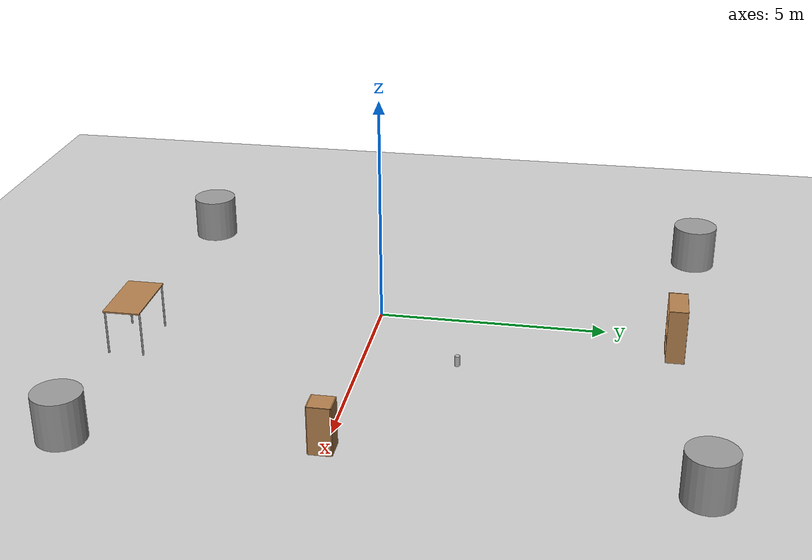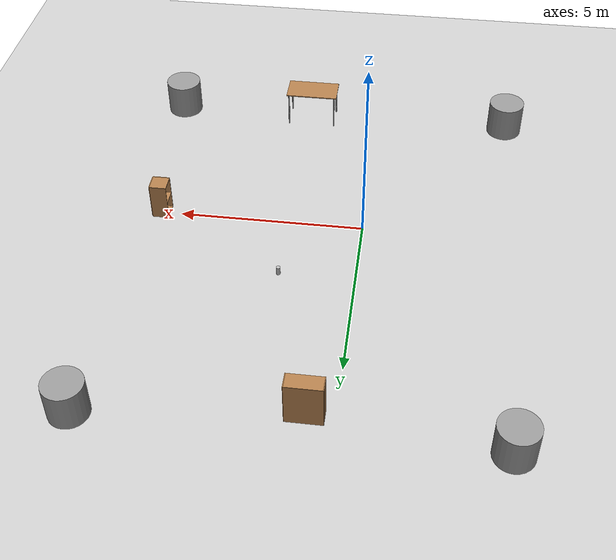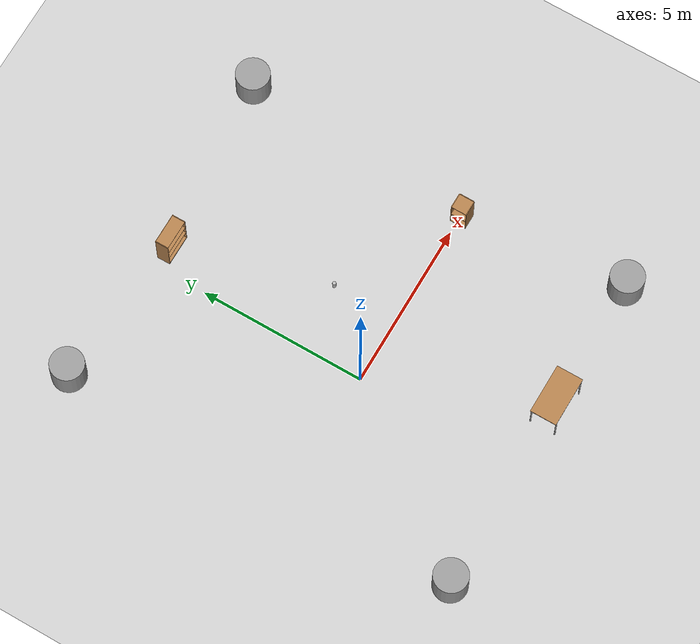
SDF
<sdf version="1.4">
 <world name="default">
  <light name="sun" type="directional">
   <pose>0 0 10 0 -0 0</pose>
   <diffuse>0.8 0.8 0.8 1</diffuse>
   <specular>0.2 0.2 0.2 1</specular>
   <attenuation>
    <range>1000</range>
    <constant>0.9</constant>
    <linear>0.01</linear>
    <quadratic>0.001</quadratic>
   </attenuation>
   <direction>-0.5 0.1 -0.9</direction>
  </light>
  <model name="ground_plane">
   <static>1</static>
   <link name="link">
    <collision name="collision">
     <geometry><plane><normal>0 0 1</normal><size>100 100</size></plane></geometry>
     <surface><friction><ode><mu>100</mu><mu2>50</mu2></ode></friction></surface>
    </collision>
    <visual name="visual">
     <cast_shadows>0</cast_shadows>
     <geometry><plane><normal>0 0 1</normal><size>100 100</size></plane></geometry>
     <material>
      <script><uri>file://media/materials/scripts/gazebo.material</uri><name>Gazebo/Grey</name></script>
     </material>
    </visual>
    <velocity_decay><linear>0</linear><angular>0</angular></velocity_decay>
   </link>
  </model>
  <physics type="ode">
   <max_step_size>0.001</max_step_size>
   <real_time_factor>1</real_time_factor>
   <real_time_update_rate>1000</real_time_update_rate>
   <gravity>0 0 -9.8</gravity>
  </physics>
  <scene><ambient>0.4 0.4 0.4 1</ambient><background>0.7 0.7 0.7 1</background><shadows>1</shadows></scene>
  <spherical_coordinates>
   <surface_model>EARTH_WGS84</surface_model>
   <latitude_deg>0</latitude_deg>
   <longitude_deg>0</longitude_deg>
   <elevation>0</elevation>
   <heading_deg>0</heading_deg>
  </spherical_coordinates>
  <model name="table">
   <static>1</static>
   <link name="link">
    <collision name="surface">
     <pose>0 0 1 0 -0 0</pose>
     <geometry><box><size>1.5 0.8 0.03</size></box></geometry>
     <surface><friction><ode><mu>0.6</mu><mu2>0.6</mu2></ode></friction></surface>
    </collision>
    <visual name="visual1">
     <pose>0 0 1 0 -0 0</pose>
     <geometry><box><size>1.5 0.8 0.03</size></box></geometry>
     <material>
      <script><uri>file://media/materials/scripts/gazebo.material</uri><name>Gazebo/Wood</name></script>
     </material>
    </visual>
    <collision name="front_left_leg">
     <pose>0.68 0.38 0.5 0 -0 0</pose>
     <geometry><cylinder><radius>0.02</radius><length>1</length></cylinder></geometry>
    </collision>
    <visual name="front_left_leg">
     <pose>0.68 0.38 0.5 0 -0 0</pose>
     <geometry><cylinder><radius>0.02</radius><length>1</length></cylinder></geometry>
     <material>
      <script><uri>file://media/materials/scripts/gazebo.material</uri><name>Gazebo/Grey</name></script>
     </material>
    </visual>
    <collision name="front_right_leg">
     <pose>0.68 -0.38 0.5 0 -0 0</pose>
     <geometry><cylinder><radius>0.02</radius><length>1</length></cylinder></geometry>
    </collision>
    <visual name="front_right_leg">
     <pose>0.68 -0.38 0.5 0 -0 0</pose>
     <geometry><cylinder><radius>0.02</radius><length>1</length></cylinder></geometry>
     <material>
      <script><uri>file://media/materials/scripts/gazebo.material</uri><name>Gazebo/Grey</name></script>
     </material>
    </visual>
    <collision name="back_right_leg">
     <pose>-0.68 -0.38 0.5 0 -0 0</pose>
     <geometry><cylinder><radius>0.02</radius><length>1</length></cylinder></geometry>
    </collision>
    <visual name="back_right_leg">
     <pose>-0.68 -0.38 0.5 0 -0 0</pose>
     <geometry><cylinder><radius>0.02</radius><length>1</length></cylinder></geometry>
     <material>
      <script><uri>file://media/materials/scripts/gazebo.material</uri><name>Gazebo/Grey</name></script>
     </material>
    </visual>
    <collision name="back_left_leg">
     <pose>-0.68 0.38 0.5 0 -0 0</pose>
     <geometry><cylinder><radius>0.02</radius><length>1</length></cylinder></geometry>
    </collision>
    <visual name="back_left_leg">
     <pose>-0.68 0.38 0.5 0 -0 0</pose>
     <geometry><cylinder><radius>0.02</radius><length>1</length></cylinder></geometry>
     <material>
      <script><uri>file://media/materials/scripts/gazebo.material</uri><name>Gazebo/Grey</name></script>
     </material>
    </visual>
    <velocity_decay><linear>0</linear><angular>0</angular></velocity_decay>
   </link>
   <pose>2 -5 0 0 -0 0</pose>
  </model>
  <model name="bookshelf">
   <static>1</static>
   <link name="link">
    <inertial><mass>1</mass></inertial>
    <collision name="back">
     <pose>0 0.005 0.6 0 -0 0</pose>
     <geometry><box><size>0.9 0.01 1.2</size></box></geometry>
    </collision>
    <visual name="visual1">
     <pose>0 0.005 0.6 0 -0 0</pose>
     <geometry><box><size>0.9 0.01 1.2</size></box></geometry>
     <material>
      <script><uri>file://media/materials/scripts/gazebo.material</uri><name>Gazebo/Wood</name></script>
     </material>
    </visual>
    <collision name="left_side">
     <pose>0.45 -0.195 0.6 0 -0 0</pose>
     <geometry><box><size>0.02 0.4 1.2</size></box></geometry>
    </collision>
    <visual name="visual2">
     <pose>0.45 -0.195 0.6 0 -0 0</pose>
     <geometry><box><size>0.02 0.4 1.2</size></box></geometry>
     <material>
      <script><uri>file://media/materials/scripts/gazebo.material</uri><name>Gazebo/Wood</name></script>
     </material>
    </visual>
    <collision name="right_side">
     <pose>-0.45 -0.195 0.6 0 -0 0</pose>
     <geometry><box><size>0.02 0.4 1.2</size></box></geometry>
    </collision>
    <visual name="visual3">
     <pose>-0.45 -0.195 0.6 0 -0 0</pose>
     <geometry><box><size>0.02 0.4 1.2</size></box></geometry>
     <material>
      <script><uri>file://media/materials/scripts/gazebo.material</uri><name>Gazebo/Wood</name></script>
     </material>
    </visual>
    <collision name="bottom">
     <pose>0 -0.195 0.03 0 -0 0</pose>
     <geometry><box><size>0.88 0.4 0.06</size></box></geometry>
    </collision>
    <visual name="visual4">
     <pose>0 -0.195 0.03 0 -0 0</pose>
     <geometry><box><size>0.88 0.4 0.06</size></box></geometry>
     <material>
      <script><uri>file://media/materials/scripts/gazebo.material</uri><name>Gazebo/Wood</name></script>
     </material>
    </visual>
    <collision name="top">
     <pose>0 -0.195 1.19 0 -0 0</pose>
     <geometry><box><size>0.88 0.4 0.02</size></box></geometry>
    </collision>
    <visual name="visual5">
     <pose>0 -0.195 1.19 0 -0 0</pose>
     <geometry><box><size>0.88 0.4 0.02</size></box></geometry>
     <material>
      <script><uri>file://media/materials/scripts/gazebo.material</uri><name>Gazebo/Wood</name></script>
     </material>
    </visual>
    <collision name="low_shelf">
     <pose>0 -0.195 0.43 0 -0 0</pose>
     <geometry><box><size>0.88 0.4 0.02</size></box></geometry>
    </collision>
    <visual name="visual6">
     <pose>0 -0.195 0.43 0 -0 0</pose>
     <geometry><box><size>0.88 0.4 0.02</size></box></geometry>
     <material>
      <script><uri>file://media/materials/scripts/gazebo.material</uri><name>Gazebo/Wood</name></script>
     </material>
    </visual>
    <collision name="high_shelf">
     <pose>0 -0.195 0.8 0 -0 0</pose>
     <geometry><box><size>0.88 0.4 0.02</size></box></geometry>
    </collision>
    <visual name="visual7">
     <pose>0 -0.195 0.8 0 -0 0</pose>
     <geometry><box><size>0.88 0.4 0.02</size></box></geometry>
     <material>
      <script><uri>file://media/materials/scripts/gazebo.material</uri><name>Gazebo/Wood</name></script>
     </material>
    </visual>
    <velocity_decay><linear>0</linear><angular>0</angular></velocity_decay>
   </link>
   <pose>0.705449 6.66698 0 0 -0 0</pose>
  </model>
  <model name="cabinet">
   <static>1</static>
   <link name="cabinet_bottom_plate">
    <inertial>
     <pose>0 0 -1 0 -0 0</pose>
     <inertia><ixx>2.05</ixx><ixy>0</ixy><ixz>0</ixz><iyy>2.05</iyy><iyz>0</iyz><izz>2.05</izz></inertia>
     <mass>25</mass>
    </inertial>
    <collision name="cabinet_bottom_plate_geom">
     <pose>0 0 0.01 0 -0 0</pose>
     <geometry><box><size>0.45 0.45 0.02</size></box></geometry>
    </collision>
    <visual name="cabinet_bottom_plate_geom_visual">
     <pose>0 0 0.01 0 -0 0</pose>
     <geometry><box><size>0.45 0.45 0.02</size></box></geometry>
     <material>
      <script><uri>file://media/materials/scripts/gazebo.material</uri><name>Gazebo/Wood</name></script>
     </material>
    </visual>
    <collision name="cabinet_bottom_plate_geom_cabinet_back_plate">
     <pose>0.235 0 0.51 0 -0 0</pose>
     <geometry><box><size>0.02 0.45 1.02</size></box></geometry>
    </collision>
    <visual name="cabinet_bottom_plate_geom_cabinet_back_plate_visual">
     <pose>0.235 0 0.51 0 -0 0</pose>
     <geometry><box><size>0.02 0.45 1.02</size></box></geometry>
     <material>
      <script><uri>file://media/materials/scripts/gazebo.material</uri><name>Gazebo/Wood</name></script>
     </material>
    </visual>
    <collision name="cabinet_bottom_plate_geom_cabinet_left_plate">
     <pose>0 0.235 0.51 0 -0 0</pose>
     <geometry><box><size>0.45 0.02 1.02</size></box></geometry>
    </collision>
    <visual name="cabinet_bottom_plate_geom_cabinet_left_plate_visual">
     <pose>0 0.235 0.51 0 -0 0</pose>
     <geometry><box><size>0.45 0.02 1.02</size></box></geometry>
     <material>
      <script><uri>file://media/materials/scripts/gazebo.material</uri><name>Gazebo/Wood</name></script>
     </material>
    </visual>
    <collision name="cabinet_bottom_plate_geom_cabinet_middle_plate">
     <pose>0 0 0.51 0 -0 0</pose>
     <geometry><box><size>0.45 0.45 0.02</size></box></geometry>
    </collision>
    <visual name="cabinet_bottom_plate_geom_cabinet_middle_plate_visual">
     <pose>0 0 0.51 0 -0 0</pose>
     <geometry><box><size>0.45 0.45 0.02</size></box></geometry>
     <material>
      <script><uri>file://media/materials/scripts/gazebo.material</uri><name>Gazebo/Wood</name></script>
     </material>
    </visual>
    <collision name="cabinet_bottom_plate_geom_cabinet_right_plate">
     <pose>0 -0.235 0.51 0 -0 0</pose>
     <geometry><box><size>0.45 0.02 1.02</size></box></geometry>
    </collision>
    <visual name="cabinet_bottom_plate_geom_cabinet_right_plate_visual">
     <pose>0 -0.235 0.51 0 -0 0</pose>
     <geometry><box><size>0.45 0.02 1.02</size></box></geometry>
     <material>
      <script><uri>file://media/materials/scripts/gazebo.material</uri><name>Gazebo/Wood</name></script>
     </material>
    </visual>
    <collision name="cabinet_bottom_plate_geom_cabinet_top_plate">
     <pose>0 0 1.01 0 -0 0</pose>
     <geometry><box><size>0.45 0.45 0.02</size></box></geometry>
    </collision>
    <visual name="cabinet_bottom_plate_geom_cabinet_top_plate_visual">
     <pose>0 0 1.01 0 -0 0</pose>
     <geometry><box><size>0.45 0.45 0.02</size></box></geometry>
     <material>
      <script><uri>file://media/materials/scripts/gazebo.material</uri><name>Gazebo/Wood</name></script>
     </material>
    </visual>
    <velocity_decay><linear>0</linear><angular>0</angular></velocity_decay>
   </link>
   <pose>5.54204 -0.044935 0 0 -0 0</pose>
  </model>
  <model name="unit_cylinder_1">
   <pose>6 -5 0.499996 1e-06 -1e-06 0</pose>
   <link name="link">
    <inertial>
     <mass>1</mass>
     <inertia><ixx>1</ixx><ixy>0</ixy><ixz>0</ixz><iyy>1</iyy><iyz>0</iyz><izz>1</izz></inertia>
    </inertial>
    <collision name="collision">
     <geometry><cylinder><radius>0.5</radius><length>1</length></cylinder></geometry>
    </collision>
    <visual name="visual">
     <geometry><cylinder><radius>0.5</radius><length>1</length></cylinder></geometry>
     <material>
      <script><uri>file://media/materials/scripts/gazebo.material</uri><name>Gazebo/Grey</name></script>
     </material>
    </visual>
    <velocity_decay><linear>0</linear><angular>0</angular></velocity_decay>
   </link>
   <static>0</static>
  </model>
  <model name="unit_cylinder_2">
   <pose>6 7 0.499995 -0 -0 -0</pose>
   <link name="link">
    <inertial>
     <mass>1</mass>
     <inertia><ixx>1</ixx><ixy>0</ixy><ixz>0</ixz><iyy>1</iyy><iyz>0</iyz><izz>1</izz></inertia>
    </inertial>
    <collision name="collision">
     <geometry><cylinder><radius>0.5</radius><length>1</length></cylinder></geometry>
    </collision>
    <visual name="visual">
     <geometry><cylinder><radius>0.5</radius><length>1</length></cylinder></geometry>
     <material>
      <script><uri>file://media/materials/scripts/gazebo.material</uri><name>Gazebo/Grey</name></script>
     </material>
    </visual>
    <velocity_decay><linear>0</linear><angular>0</angular></velocity_decay>
   </link>
   <static>0</static>
  </model>
  <model name="unit_cylinder_3">
   <pose>-3.82732 -5.04209 0.499998 -0 -0 -0.001057</pose>
   <link name="link">
    <inertial>
     <mass>1</mass>
     <inertia><ixx>1</ixx><ixy>0</ixy><ixz>0</ixz><iyy>1</iyy><iyz>0</iyz><izz>1</izz></inertia>
    </inertial>
    <collision name="collision">
     <geometry><cylinder><radius>0.5</radius><length>1</length></cylinder></geometry>
    </collision>
    <visual name="visual">
     <geometry><cylinder><radius>0.5</radius><length>1</length></cylinder></geometry>
     <material>
      <script><uri>file://media/materials/scripts/gazebo.material</uri><name>Gazebo/Grey</name></script>
     </material>
    </visual>
    <velocity_decay><linear>0</linear><angular>0</angular></velocity_decay>
   </link>
   <static>0</static>
  </model>
  <model name="unit_cylinder_4">
   <pose>-3.94181 6.94429 0.499998 1e-06 -0 -0.006287</pose>
   <link name="link">
    <inertial>
     <mass>1</mass>
     <inertia><ixx>1</ixx><ixy>0</ixy><ixz>0</ixz><iyy>1</iyy><iyz>0</iyz><izz>1</izz></inertia>
    </inertial>
    <collision name="collision">
     <geometry><cylinder><radius>0.5</radius><length>1</length></cylinder></geometry>
    </collision>
    <visual name="visual">
     <geometry><cylinder><radius>0.5</radius><length>1</length></cylinder></geometry>
     <material>
      <script><uri>file://media/materials/scripts/gazebo.material</uri><name>Gazebo/Grey</name></script>
     </material>
    </visual>
    <velocity_decay><linear>0</linear><angular>0</angular></velocity_decay>
   </link>
   <static>0</static>
  </model>
  <model name="beer_1">
   <link name="link">
    <pose>0 0 0.115 0 -0 0</pose>
    <inertial>
     <mass>0.39</mass>
     <inertia><ixx>0.00058</ixx><ixy>0</ixy><ixz>0</ixz><iyy>0.00058</iyy><iyz>0</iyz><izz>0.00019</izz></inertia>
    </inertial>
    <collision name="collision">
     <geometry><cylinder><radius>0.055</radius><length>0.23</length></cylinder></geometry>
    </collision>
    <visual name="visual">
     <geometry><cylinder><radius>0.055</radius><length>0.23</length></cylinder></geometry>
     <material>
      <script>
       <uri>model://beer/materials/scripts</uri>
       <uri>model://beer/materials/textures</uri>
       <name>Beer/Diffuse</name>
      </script>
     </material>
    </visual>
    <velocity_decay><linear>0</linear><angular>0</angular></velocity_decay>
   </link>
   <pose>2 2 -2e-06 1e-06 -6.46235e-27 -3.7e-05</pose>
   <static>0</static>
  </model>
 </world>
</sdf>
